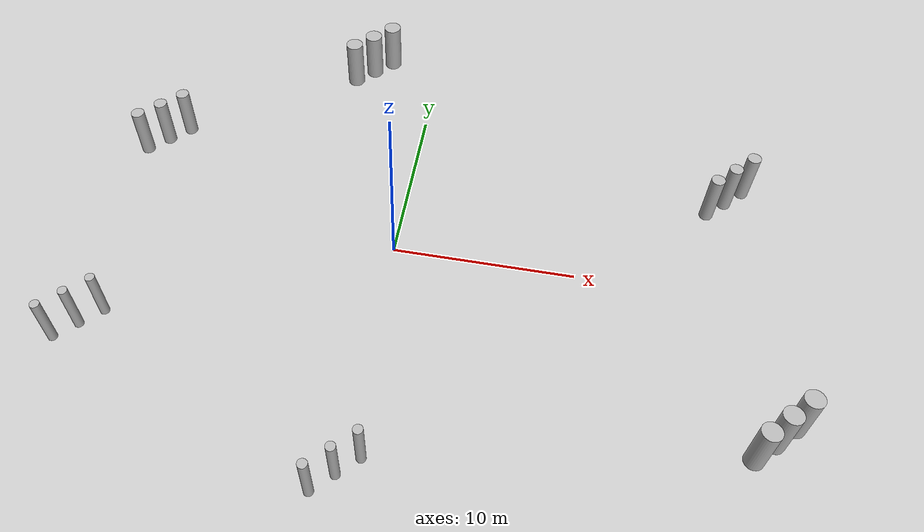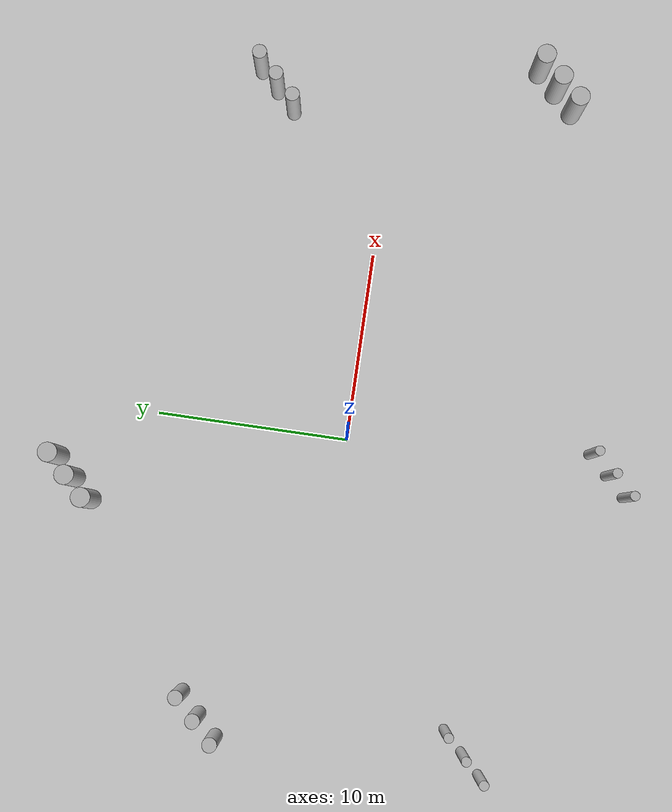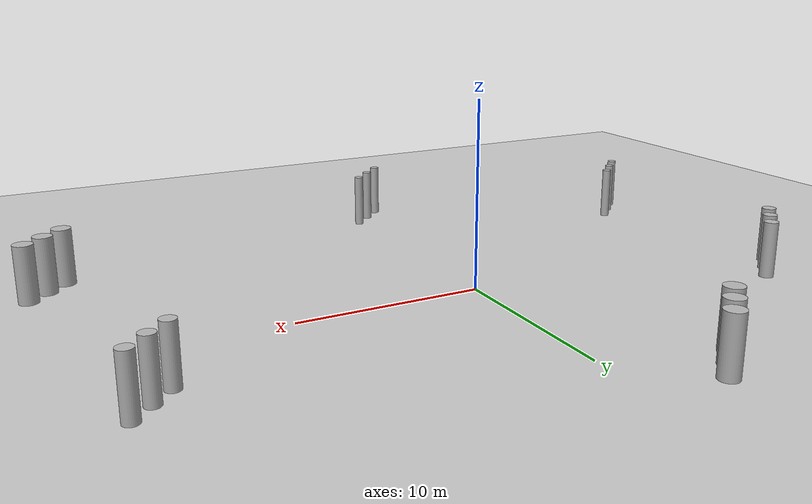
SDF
<sdf version='1.6'>
  <world name='museum'>

    <include>
      <uri>model://sun</uri>
    </include>

    <include>
      <uri>model://ground_plane</uri>
    </include>

    <!-- Example cylinder -->
    <include>
      <uri>model://cylinder</uri>
      <pose>0 0 0.5 0 0 0</pose>
    </include>

    <include>
      <uri>model://cylinder</uri>
      <pose>1 1 0.5 0 0 0</pose>
    </include>

    <include>
      <uri>model://cylinder</uri>
      <pose>-1 -1 0.5 0 0 0</pose>
    </include>

    <!-- Camera position -->
    <gui fullscreen='0'>
      <camera name='user_camera'>
        <pose>0 0 12 0 1.57 0</pose>
        <view_controller>orbit</view_controller>
      </camera>
    </gui>

  </world>
</sdf>

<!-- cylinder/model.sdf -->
<sdf version="1.5">
    <model name="cylinder">
        <static>true</static>
        <link name="link">
            <collision name="collision1">
                <pose>20 -8.4 0 0 0 0</pose>
                <geometry>
                    <mesh>
                        <uri>model://cylinder/meshes/cylinder_1.stl</uri>
                    </mesh>
                </geometry>
            </collision>
            <visual name="visual1">

              <pose>20 -8.4 0 0 0 0</pose>
              <geometry>
              <mesh>
                 <uri>model://cylinder/meshes/cylinder_1.dae</uri>
              </mesh>
              </geometry>

              <material>
                  <script>
                      <uri>model://cylinder/materials/scripts</uri>
                      <uri>model://cylinder/materials/textures</uri>
                      <name>cylinderMat/Diffuse</name>
                  </script>
              </material>
             </visual>

             <collision name="collision2">
                <pose>-4 13.7 0 0 0 0</pose>
                <geometry>
                    <mesh>
                        <uri>model://cylinder/meshes/cylinder_1.stl</uri>
                    </mesh>
                </geometry>
            </collision>
            <visual name="visual2">

              <pose>-4 13.7 0 0 0 0</pose>
              <geometry>
              <mesh>
                 <uri>model://cylinder/meshes/cylinder_1.dae</uri>
              </mesh>
              </geometry>

              <material>
                  <script>
                      <uri>model://cylinder/materials/scripts</uri>
                      <uri>model://cylinder/materials/textures</uri>
                      <name>cylinderMat/Diffuse</name>
                  </script>
              </material>
             </visual>

             <collision name="collision3">
                <pose>-15 -8 0 0 0 0</pose>
                <geometry>
                    <mesh>
                        <uri>model://cylinder/meshes/cylinder_0_5.stl</uri>
                    </mesh>
                </geometry>
            </collision>
            <visual name="visual3">

              <pose>-15 -8 0 0 0 0</pose>
              <geometry>
              <mesh>
                 <uri>model://cylinder/meshes/cylinder_0_5.dae</uri>
              </mesh>
              </geometry>

              <material>
                  <script>
                      <uri>model://cylinder/materials/scripts</uri>
                      <uri>model://cylinder/materials/textures</uri>
                      <name>cylinderMat/Diffuse</name>
                  </script>
              </material>
             </visual>

             <collision name="collision4">
                <pose>0 -13.6 0 0 0 0</pose>
                <geometry>
                    <mesh>
                        <uri>model://cylinder/meshes/cylinder_0_5.stl</uri>
                    </mesh>
                </geometry>
            </collision>
            <visual name="visual4">

              <pose>0 -13.6 0 0 0 0</pose>
              <geometry>
              <mesh>
                 <uri>model://cylinder/meshes/cylinder_0_5.dae</uri>
              </mesh>
              </geometry>

              <material>
                  <script>
                      <uri>model://cylinder/materials/scripts</uri>
                      <uri>model://cylinder/materials/textures</uri>
                      <name>cylinderMat/Diffuse</name>
                  </script>
              </material>
             </visual>

             <collision name="collision5">
                <pose>18 6.3 0 0 0 0</pose>
                <geometry>
                    <mesh>
                        <uri>model://cylinder/meshes/cylinder_0_75.stl</uri>
                    </mesh>
                </geometry>
            </collision>
            <visual name="visual5">

              <pose>18 6.3 0 0 0 0</pose>
              <geometry>
              <mesh>
                 <uri>model://cylinder/meshes/cylinder_0_75.dae</uri>
              </mesh>
              </geometry>

              <material>
                  <script>
                      <uri>model://cylinder/materials/scripts</uri>
                      <uri>model://cylinder/materials/textures</uri>
                      <name>cylinderMat/Diffuse</name>
                  </script>
              </material>
             </visual>

             <collision name="collision6">
                <pose>-15 5.5 0 0 0 0</pose>
                <geometry>
                    <mesh>
                        <uri>model://cylinder/meshes/cylinder_0_75.stl</uri>
                    </mesh>
                </geometry>
            </collision>
            <visual name="visual6">

              <pose>-15 5.5 0 0 0 0</pose>
              <geometry>
              <mesh>
                 <uri>model://cylinder/meshes/cylinder_0_75.dae</uri>
              </mesh>
              </geometry>

              <material>
                  <script>
                      <uri>model://cylinder/materials/scripts</uri>
                      <uri>model://cylinder/materials/textures</uri>
                      <name>cylinderMat/Diffuse</name>
                  </script>
              </material>
             </visual>

        </link>
    </model>
</sdf>
